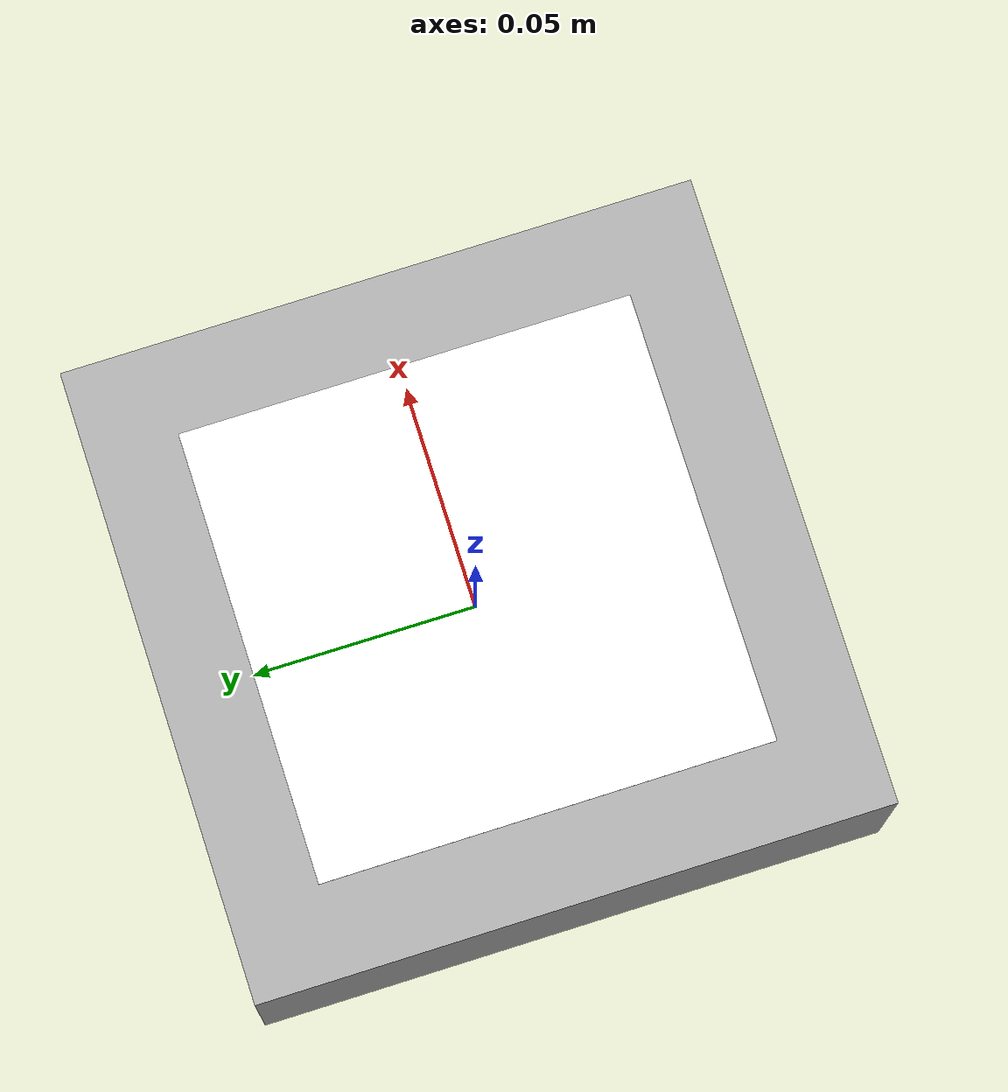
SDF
<?xml version="1.0" ?>
<sdf version="1.6">
  <model name='aruco_box'>
    <pose>0 0 0 0 0 0</pose>

    <plugin filename="libignition-gazebo-pose-publisher-system.so" name="ignition::gazebo::systems::PosePublisher">
      <publish_link_pose>true</publish_link_pose>
      <publish_collision_pose>false</publish_collision_pose>
      <publish_visual_pose>true</publish_visual_pose>
      <update_frequency>30</update_frequency>
    </plugin>

    <link name='link'>
      <inertial>
        <mass>1</mass>
        <inertia>
          <ixx>0.166667</ixx>
          <ixy>0</ixy>
          <ixz>0</ixz>
          <iyy>0.166667</iyy>
          <iyz>0</iyz>
          <izz>0.166667</izz>
        </inertia>
        <pose>0 0 0 0 0 0</pose>
      </inertial>

      <collision name='collision'>
        <geometry>
          <box>
            <size>0.14 0.14 0.05</size>
          </box>
        </geometry>
        <surface>
          <contact>
            <ode/>
          </contact>
          <bounce>
            <restitution_coefficient>0</restitution_coefficient>
            <threshold>1e+06</threshold>
          </bounce>
          <friction>
            <torsional>
              <coefficient>1</coefficient>
              <patch_radius>0</patch_radius>
              <surface_radius>0</surface_radius>
              <use_patch_radius>true</use_patch_radius>
              <ode>
                <slip>0</slip>
              </ode>
            </torsional>
            <ode>
              <mu>1</mu>
              <mu2>1</mu2>
              <fdir1>0 0 0</fdir1>
              <slip1>0</slip1>
              <slip2>0</slip2>
            </ode>
          </friction>
        </surface>
        <max_contacts>10</max_contacts>
      </collision>

      <!-- Main box visual -->
      <visual name='box_visual'>
        <geometry>
          <box>
            <size>0.14 0.14 0.05</size>
          </box>
        </geometry>
        <material>
          <ambient>0.7 0.7 0.7 1</ambient>
          <diffuse>0.7 0.7 0.7 1</diffuse>
          <specular>0.1 0.1 0.1 1</specular>
          <emissive>0 0 0 1</emissive>
        </material>
      </visual>

      <!-- Top face with PNG texture -->
      <visual name='top_texture'>
        <pose>0 0 0.0251 0 0 0</pose>
        <geometry>
          <plane>
            <normal>0 0 1</normal>
            <size>0.10 0.10</size>
          </plane>
        </geometry>
        <material>
          <ambient>1 1 1 1</ambient>
          <diffuse>1 1 1 1</diffuse>
          <specular>0 0 0 1</specular>
          <emissive>0 0 0 1</emissive>
          <pbr>
            <metal>
              <albedo_map>file:///home/lukas/Diploma-Thesis-2025/lbr-stack/src/aruco_gazebo/aruco_box/materials/textures/aruco_marker.png</albedo_map>
            </metal>
          </pbr>
        </material>
      </visual>

      <self_collide>false</self_collide>
      <enable_wind>false</enable_wind>
      <kinematic>false</kinematic>
    </link>
  </model>
</sdf>
